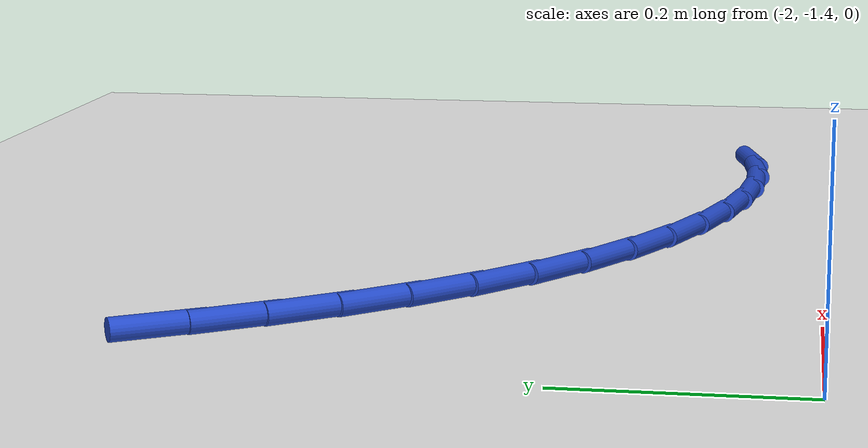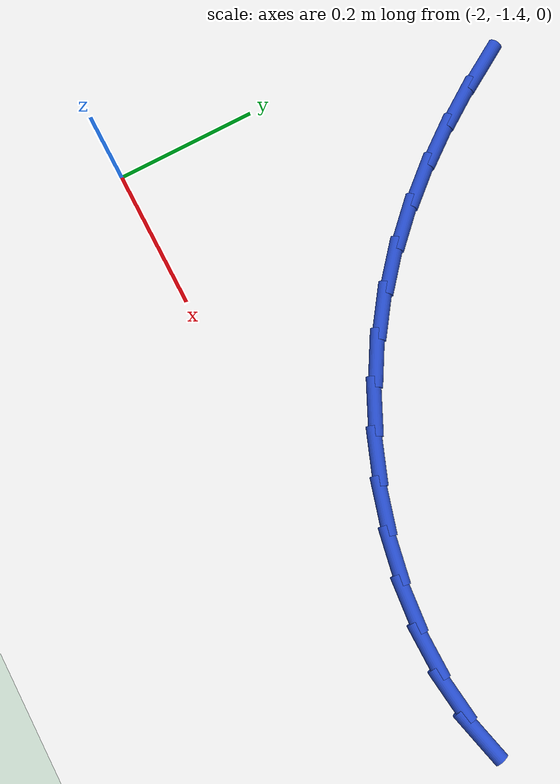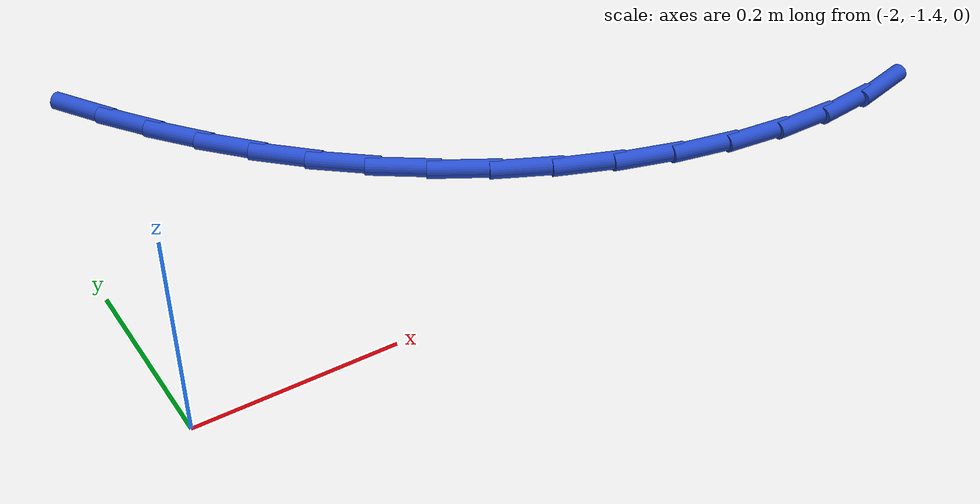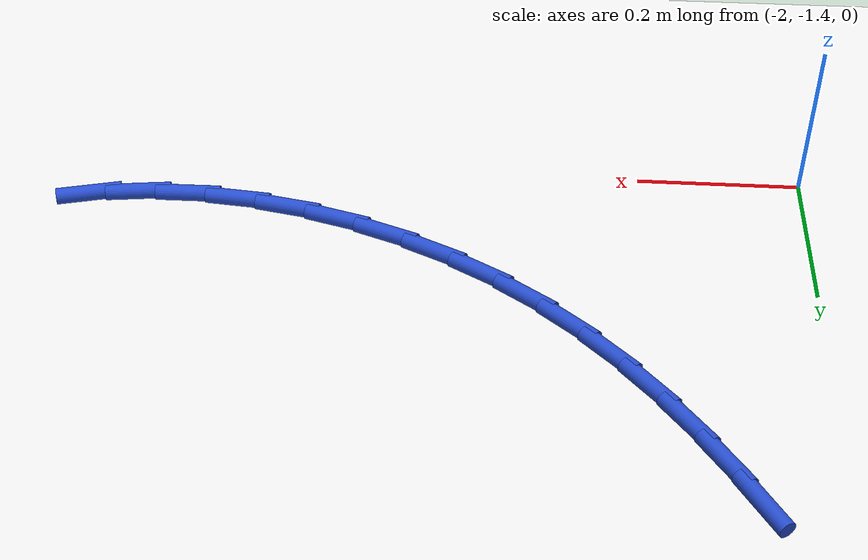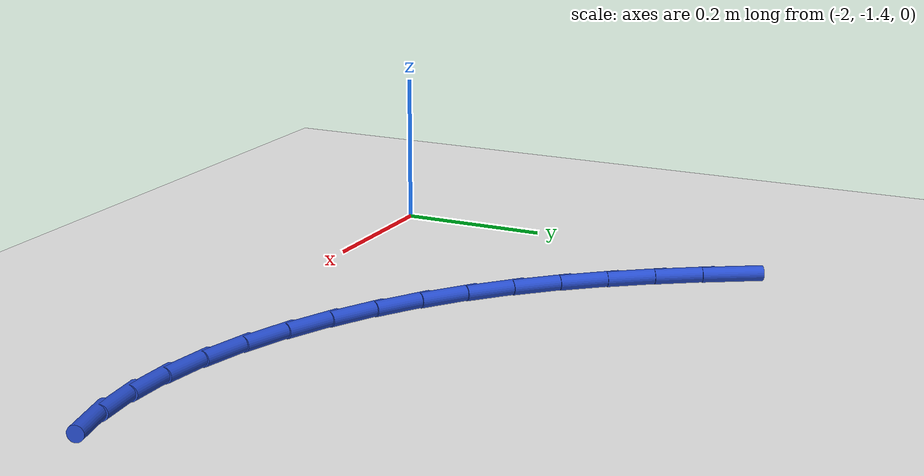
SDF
<sdf version="1.6">
 <world name="default">
  <model name="ground_plane">
   <static>1</static>
   <link name="link">
    <collision name="collision">
     <geometry><plane><normal>0 0 1</normal><size>100 100</size></plane></geometry>
     <surface><friction><ode><mu>100</mu><mu2>50</mu2></ode></friction></surface>
    </collision>
    <visual name="visual">
     <cast_shadows>0</cast_shadows>
     <geometry><plane><normal>0 0 1</normal><size>100 100</size></plane></geometry>
     <material>
      <script><uri>file://media/materials/scripts/gazebo.material</uri><name>Gazebo/WhiteGlow</name></script>
     </material>
    </visual>
   </link>
  </model>
  <model name="line">
   <link name="link_76">
    <pose>-1.9056157091877557 -0.8842309890288522 0.01 0 1.57 -1.0204603671344326</pose>
    <collision name="collision">
     <geometry><cylinder><radius>0.01</radius><length>0.08</length></cylinder></geometry>
    </collision>
    <visual name="visual">
     <material>
      <script><name>Gazebo/Blue</name><uri>file://media/materials/scripts/gazebo.material</uri></script>
     </material>
     <geometry><cylinder><radius>0.01</radius><length>0.08</length></cylinder></geometry>
    </visual>
   </link>
   <link name="link_77">
    <pose>-1.8727710189965 -0.9377616718953896 0.01 0 1.57 -0.9708045444471963</pose>
    <collision name="collision">
     <geometry><cylinder><radius>0.01</radius><length>0.08</length></cylinder></geometry>
    </collision>
    <visual name="visual">
     <material>
      <script><name>Gazebo/Blue</name><uri>file://media/materials/scripts/gazebo.material</uri></script>
     </material>
     <geometry><cylinder><radius>0.01</radius><length>0.08</length></cylinder></geometry>
    </visual>
   </link>
   <link name="link_78">
    <pose>-1.837194790781075 -0.9897642174827234 0.01 0 1.57 -0.9140071969192646</pose>
    <collision name="collision">
     <geometry><cylinder><radius>0.01</radius><length>0.08</length></cylinder></geometry>
    </collision>
    <visual name="visual">
     <material>
      <script><name>Gazebo/Blue</name><uri>file://media/materials/scripts/gazebo.material</uri></script>
     </material>
     <geometry><cylinder><radius>0.01</radius><length>0.08</length></cylinder></geometry>
    </visual>
   </link>
   <link name="link_79">
    <pose>-1.7986407799059694 -1.039771184983322 0.01 0 1.57 -0.849860697656709</pose>
    <collision name="collision">
     <geometry><cylinder><radius>0.01</radius><length>0.08</length></cylinder></geometry>
    </collision>
    <visual name="visual">
     <material>
      <script><name>Gazebo/Blue</name><uri>file://media/materials/scripts/gazebo.material</uri></script>
     </material>
     <geometry><cylinder><radius>0.01</radius><length>0.08</length></cylinder></geometry>
    </visual>
   </link>
   <link name="link_80">
    <pose>-1.7568627417356708 -1.0873151335896571 0.01 0 1.57 -0.778333864180806</pose>
    <collision name="collision">
     <geometry><cylinder><radius>0.01</radius><length>0.08</length></cylinder></geometry>
    </collision>
    <visual name="visual">
     <material>
      <script><name>Gazebo/Blue</name><uri>file://media/materials/scripts/gazebo.material</uri></script>
     </material>
     <geometry><cylinder><radius>0.01</radius><length>0.08</length></cylinder></geometry>
    </visual>
   </link>
   <link name="link_81">
    <pose>-1.7116144316346658 -1.1319286224941987 0.01 0 1.57 -0.6996783451179175</pose>
    <collision name="collision">
     <geometry><cylinder><radius>0.01</radius><length>0.08</length></cylinder></geometry>
    </collision>
    <visual name="visual">
     <material>
      <script><name>Gazebo/Blue</name><uri>file://media/materials/scripts/gazebo.material</uri></script>
     </material>
     <geometry><cylinder><radius>0.01</radius><length>0.08</length></cylinder></geometry>
    </visual>
   </link>
   <link name="link_82">
    <pose>-1.6626496049674444 -1.1731442108894161 0.01 0 1.57 -0.6150671039377852</pose>
    <collision name="collision">
     <geometry><cylinder><radius>0.01</radius><length>0.08</length></cylinder></geometry>
    </collision>
    <visual name="visual">
     <material>
      <script><name>Gazebo/Blue</name><uri>file://media/materials/scripts/gazebo.material</uri></script>
     </material>
     <geometry><cylinder><radius>0.01</radius><length>0.08</length></cylinder></geometry>
    </visual>
   </link>
   <link name="link_83">
    <pose>-1.6097748427304088 -1.2104995987980838 0.01 0 1.57 -0.5305834586276438</pose>
    <collision name="collision">
     <geometry><cylinder><radius>0.01</radius><length>0.08</length></cylinder></geometry>
    </collision>
    <visual name="visual">
     <material>
      <script><name>Gazebo/Blue</name><uri>file://media/materials/scripts/gazebo.material</uri></script>
     </material>
     <geometry><cylinder><radius>0.01</radius><length>0.08</length></cylinder></geometry>
    </visual>
   </link>
   <link name="link_84">
    <pose>-1.5533759985973528 -1.2435888593032856 0.01 0 1.57 -0.44815139916966623</pose>
    <collision name="collision">
     <geometry><cylinder><radius>0.01</radius><length>0.08</length></cylinder></geometry>
    </collision>
    <visual name="visual">
     <material>
      <script><name>Gazebo/Blue</name><uri>file://media/materials/scripts/gazebo.material</uri></script>
     </material>
     <geometry><cylinder><radius>0.01</radius><length>0.08</length></cylinder></geometry>
    </visual>
   </link>
   <link name="link_85">
    <pose>-1.4941967523614608 -1.2720408880409322 0.01 0 1.57 -0.3657732194359964</pose>
    <collision name="collision">
     <geometry><cylinder><radius>0.01</radius><length>0.08</length></cylinder></geometry>
    </collision>
    <visual name="visual">
     <material>
      <script><name>Gazebo/Blue</name><uri>file://media/materials/scripts/gazebo.material</uri></script>
     </material>
     <geometry><cylinder><radius>0.01</radius><length>0.08</length></cylinder></geometry>
    </visual>
   </link>
   <link name="link_86">
    <pose>-1.4329860723462269 -1.2954850953106654 0.01 0 1.57 -0.2814126827098759</pose>
    <collision name="collision">
     <geometry><cylinder><radius>0.01</radius><length>0.08</length></cylinder></geometry>
    </collision>
    <visual name="visual">
     <material>
      <script><name>Gazebo/Blue</name><uri>file://media/materials/scripts/gazebo.material</uri></script>
     </material>
     <geometry><cylinder><radius>0.01</radius><length>0.08</length></cylinder></geometry>
    </visual>
   </link>
   <link name="link_87">
    <pose>-1.3704929268751402 -1.3135508914121272 0.01 0 1.57 -0.192989827467407</pose>
    <collision name="collision">
     <geometry><cylinder><radius>0.01</radius><length>0.08</length></cylinder></geometry>
    </collision>
    <visual name="visual">
     <material>
      <script><name>Gazebo/Blue</name><uri>file://media/materials/scripts/gazebo.material</uri></script>
     </material>
     <geometry><cylinder><radius>0.01</radius><length>0.08</length></cylinder></geometry>
    </visual>
   </link>
   <link name="link_88">
    <pose>-1.3074662842716922 -1.3258676866449604 0.01 0 1.57 -0.09834575719597077</pose>
    <collision name="collision">
     <geometry><cylinder><radius>0.01</radius><length>0.08</length></cylinder></geometry>
    </collision>
    <visual name="visual">
     <material>
      <script><name>Gazebo/Blue</name><uri>file://media/materials/scripts/gazebo.material</uri></script>
     </material>
     <geometry><cylinder><radius>0.01</radius><length>0.08</length></cylinder></geometry>
    </visual>
   </link>
   <link name="link_89">
    <pose>-1.2446551128593726 -1.3320648913088058 0.01 0 1.57 0.004737088040855311</pose>
    <collision name="collision">
     <geometry><cylinder><radius>0.01</radius><length>0.08</length></cylinder></geometry>
    </collision>
    <visual name="visual">
     <material>
      <script><name>Gazebo/Blue</name><uri>file://media/materials/scripts/gazebo.material</uri></script>
     </material>
     <geometry><cylinder><radius>0.01</radius><length>0.08</length></cylinder></geometry>
    </visual>
   </link>
   <link name="link_90">
    <pose>-1.182808380961675 -1.331771915703306 0.01 0 1.57 0.11840824262568123</pose>
    <collision name="collision">
     <geometry><cylinder><radius>0.01</radius><length>0.08</length></cylinder></geometry>
    </collision>
    <visual name="visual">
     <material>
      <script><name>Gazebo/Blue</name><uri>file://media/materials/scripts/gazebo.material</uri></script>
     </material>
     <geometry><cylinder><radius>0.01</radius><length>0.08</length></cylinder></geometry>
    </visual>
   </link>
   <link name="link_91">
    <pose>-1.1226750569020882 -1.3246181701281035 0.01 0 1.57 0.24107268850045785</pose>
    <collision name="collision">
     <geometry><cylinder><radius>0.01</radius><length>0.08</length></cylinder></geometry>
    </collision>
    <visual name="visual">
     <material>
      <script><name>Gazebo/Blue</name><uri>file://media/materials/scripts/gazebo.material</uri></script>
     </material>
     <geometry><cylinder><radius>0.01</radius><length>0.08</length></cylinder></geometry>
    </visual>
   </link>
  </model>
 </world>
</sdf>
